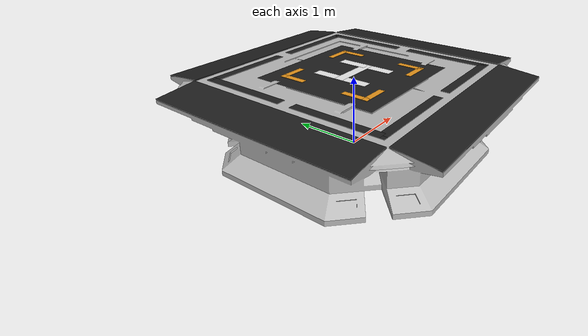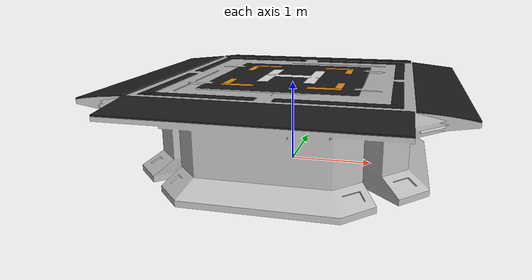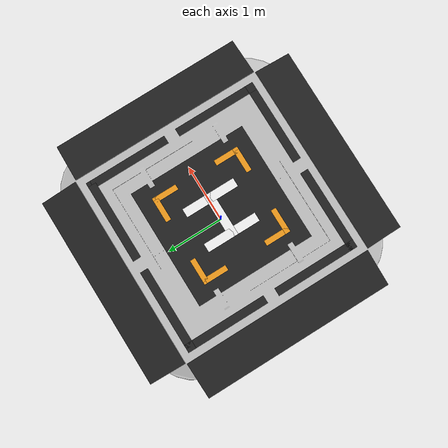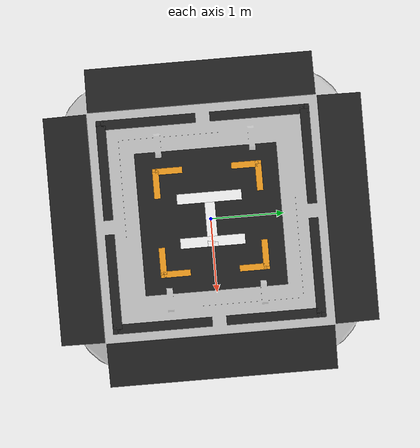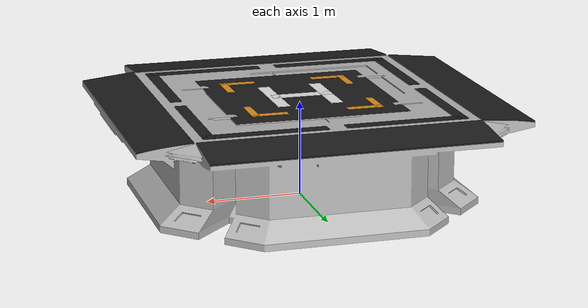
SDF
<?xml version='1.0' encoding='utf-8'?>
<sdf version="1.9"><model name="helipad"><static>true</static><link name="helipad_link"><visual name="helipad_base_visual"><pose>0 0 0 1.57079632679 0 0</pose><geometry><mesh><uri>model://helipad/meshes/helipad.obj</uri><scale>0.005 0.005 0.005</scale></mesh></geometry></visual><visual name="inner_panel"><pose>0 0 1.0635 0 0 0</pose><geometry><box><size>1.80 1.80 0.002</size></box></geometry><material><ambient>0.12 0.12 0.12 1</ambient><diffuse>0.12 0.12 0.12 1</diffuse></material></visual><visual name="H_left"><pose>-0.28 0 1.072 0 0 0</pose><geometry><box><size>0.13 0.82 0.006</size></box></geometry><material><ambient>0.92 0.92 0.92 1</ambient><diffuse>0.92 0.92 0.92 1</diffuse></material></visual><visual name="H_right"><pose>0.28 0 1.072 0 0 0</pose><geometry><box><size>0.13 0.82 0.006</size></box></geometry><material><ambient>0.92 0.92 0.92 1</ambient><diffuse>0.92 0.92 0.92 1</diffuse></material></visual><visual name="H_middle"><pose>0 0 1.072 0 0 0</pose><geometry><box><size>0.69 0.13 0.006</size></box></geometry><material><ambient>0.92 0.92 0.92 1</ambient><diffuse>0.92 0.92 0.92 1</diffuse></material></visual><visual name="orange_tr_horizontal"><pose>0.480000 0.650000 1.070000 0 0 0</pose><geometry><box><size>0.340000 0.080000 0.006000</size></box></geometry><material><ambient>0.90 0.58 0.10 1</ambient><diffuse>0.90 0.58 0.10 1</diffuse></material></visual><visual name="orange_tr_vertical"><pose>0.650000 0.480000 1.070000 0 0 0</pose><geometry><box><size>0.080000 0.340000 0.006000</size></box></geometry><material><ambient>0.90 0.58 0.10 1</ambient><diffuse>0.90 0.58 0.10 1</diffuse></material></visual><visual name="orange_tr_corner"><pose>0.650000 0.650000 1.070000 0 0 0</pose><geometry><box><size>0.080000 0.080000 0.006000</size></box></geometry><material><ambient>0.90 0.58 0.10 1</ambient><diffuse>0.90 0.58 0.10 1</diffuse></material></visual><visual name="orange_tl_horizontal"><pose>-0.480000 0.650000 1.070000 0 0 0</pose><geometry><box><size>0.340000 0.080000 0.006000</size></box></geometry><material><ambient>0.90 0.58 0.10 1</ambient><diffuse>0.90 0.58 0.10 1</diffuse></material></visual><visual name="orange_tl_vertical"><pose>-0.650000 0.480000 1.070000 0 0 0</pose><geometry><box><size>0.080000 0.340000 0.006000</size></box></geometry><material><ambient>0.90 0.58 0.10 1</ambient><diffuse>0.90 0.58 0.10 1</diffuse></material></visual><visual name="orange_tl_corner"><pose>-0.650000 0.650000 1.070000 0 0 0</pose><geometry><box><size>0.080000 0.080000 0.006000</size></box></geometry><material><ambient>0.90 0.58 0.10 1</ambient><diffuse>0.90 0.58 0.10 1</diffuse></material></visual><visual name="orange_br_horizontal"><pose>0.480000 -0.650000 1.070000 0 0 0</pose><geometry><box><size>0.340000 0.080000 0.006000</size></box></geometry><material><ambient>0.90 0.58 0.10 1</ambient><diffuse>0.90 0.58 0.10 1</diffuse></material></visual><visual name="orange_br_vertical"><pose>0.650000 -0.480000 1.070000 0 0 0</pose><geometry><box><size>0.080000 0.340000 0.006000</size></box></geometry><material><ambient>0.90 0.58 0.10 1</ambient><diffuse>0.90 0.58 0.10 1</diffuse></material></visual><visual name="orange_br_corner"><pose>0.650000 -0.650000 1.070000 0 0 0</pose><geometry><box><size>0.080000 0.080000 0.006000</size></box></geometry><material><ambient>0.90 0.58 0.10 1</ambient><diffuse>0.90 0.58 0.10 1</diffuse></material></visual><visual name="orange_bl_horizontal"><pose>-0.480000 -0.650000 1.070000 0 0 0</pose><geometry><box><size>0.340000 0.080000 0.006000</size></box></geometry><material><ambient>0.90 0.58 0.10 1</ambient><diffuse>0.90 0.58 0.10 1</diffuse></material></visual><visual name="orange_bl_vertical"><pose>-0.650000 -0.480000 1.070000 0 0 0</pose><geometry><box><size>0.080000 0.340000 0.006000</size></box></geometry><material><ambient>0.90 0.58 0.10 1</ambient><diffuse>0.90 0.58 0.10 1</diffuse></material></visual><visual name="orange_bl_corner"><pose>-0.650000 -0.650000 1.070000 0 0 0</pose><geometry><box><size>0.080000 0.080000 0.006000</size></box></geometry><material><ambient>0.90 0.58 0.10 1</ambient><diffuse>0.90 0.58 0.10 1</diffuse></material></visual><visual name="dark_tr_horizontal"><pose>0.690000 1.290000 1.070000 0 0 0</pose><geometry><box><size>1.200000 0.120000 0.006000</size></box></geometry><material><ambient>0.12 0.12 0.12 1</ambient><diffuse>0.12 0.12 0.12 1</diffuse></material></visual><visual name="dark_tr_vertical"><pose>1.290000 0.690000 1.070000 0 0 0</pose><geometry><box><size>0.120000 1.200000 0.006000</size></box></geometry><material><ambient>0.12 0.12 0.12 1</ambient><diffuse>0.12 0.12 0.12 1</diffuse></material></visual><visual name="dark_tr_corner"><pose>1.290000 1.290000 1.070000 0 0 0</pose><geometry><box><size>0.120000 0.120000 0.006000</size></box></geometry><material><ambient>0.12 0.12 0.12 1</ambient><diffuse>0.12 0.12 0.12 1</diffuse></material></visual><visual name="dark_tl_horizontal"><pose>-0.690000 1.290000 1.070000 0 0 0</pose><geometry><box><size>1.200000 0.120000 0.006000</size></box></geometry><material><ambient>0.12 0.12 0.12 1</ambient><diffuse>0.12 0.12 0.12 1</diffuse></material></visual><visual name="dark_tl_vertical"><pose>-1.290000 0.690000 1.070000 0 0 0</pose><geometry><box><size>0.120000 1.200000 0.006000</size></box></geometry><material><ambient>0.12 0.12 0.12 1</ambient><diffuse>0.12 0.12 0.12 1</diffuse></material></visual><visual name="dark_tl_corner"><pose>-1.290000 1.290000 1.070000 0 0 0</pose><geometry><box><size>0.120000 0.120000 0.006000</size></box></geometry><material><ambient>0.12 0.12 0.12 1</ambient><diffuse>0.12 0.12 0.12 1</diffuse></material></visual><visual name="dark_br_horizontal"><pose>0.690000 -1.290000 1.070000 0 0 0</pose><geometry><box><size>1.200000 0.120000 0.006000</size></box></geometry><material><ambient>0.12 0.12 0.12 1</ambient><diffuse>0.12 0.12 0.12 1</diffuse></material></visual><visual name="dark_br_vertical"><pose>1.290000 -0.690000 1.070000 0 0 0</pose><geometry><box><size>0.120000 1.200000 0.006000</size></box></geometry><material><ambient>0.12 0.12 0.12 1</ambient><diffuse>0.12 0.12 0.12 1</diffuse></material></visual><visual name="dark_br_corner"><pose>1.290000 -1.290000 1.070000 0 0 0</pose><geometry><box><size>0.120000 0.120000 0.006000</size></box></geometry><material><ambient>0.12 0.12 0.12 1</ambient><diffuse>0.12 0.12 0.12 1</diffuse></material></visual><visual name="dark_bl_horizontal"><pose>-0.690000 -1.290000 1.070000 0 0 0</pose><geometry><box><size>1.200000 0.120000 0.006000</size></box></geometry><material><ambient>0.12 0.12 0.12 1</ambient><diffuse>0.12 0.12 0.12 1</diffuse></material></visual><visual name="dark_bl_vertical"><pose>-1.290000 -0.690000 1.070000 0 0 0</pose><geometry><box><size>0.120000 1.200000 0.006000</size></box></geometry><material><ambient>0.12 0.12 0.12 1</ambient><diffuse>0.12 0.12 0.12 1</diffuse></material></visual><visual name="dark_bl_corner"><pose>-1.290000 -1.290000 1.070000 0 0 0</pose><geometry><box><size>0.120000 0.120000 0.006000</size></box></geometry><material><ambient>0.12 0.12 0.12 1</ambient><diffuse>0.12 0.12 0.12 1</diffuse></material></visual><visual name="outer_rect_top"><pose>0 1.74 1.040 -0.104719755 0 0</pose><geometry><box><size>2.89 0.56 0.016</size></box></geometry><material><ambient>0.12 0.12 0.12 1</ambient><diffuse>0.12 0.12 0.12 1</diffuse></material></visual><visual name="outer_rect_bottom"><pose>0 -1.74 1.040 0.104719755 0 0</pose><geometry><box><size>2.89 0.56 0.016</size></box></geometry><material><ambient>0.12 0.12 0.12 1</ambient><diffuse>0.12 0.12 0.12 1</diffuse></material></visual><visual name="outer_rect_left"><pose>-1.74 0 1.040 0 -0.104719755 0</pose><geometry><box><size>0.56 2.89 0.016</size></box></geometry><material><ambient>0.12 0.12 0.12 1</ambient><diffuse>0.12 0.12 0.12 1</diffuse></material></visual><visual name="outer_rect_right"><pose>1.74 0 1.040 0 0.104719755 0</pose><geometry><box><size>0.56 2.89 0.016</size></box></geometry><material><ambient>0.12 0.12 0.12 1</ambient><diffuse>0.12 0.12 0.12 1</diffuse></material></visual><collision name="helipad_base_collision"><pose>0 0 0.51 0 0 0</pose><geometry><box><size>3.20 3.20 1.02</size></box></geometry></collision><collision name="helipad_top_collision"><pose>0 0 1.047 0 0 0</pose><geometry><box><size>3.90 3.90 0.05</size></box></geometry></collision></link></model></sdf>
